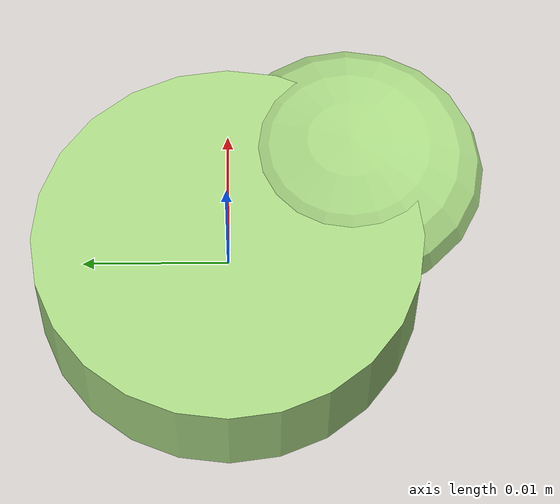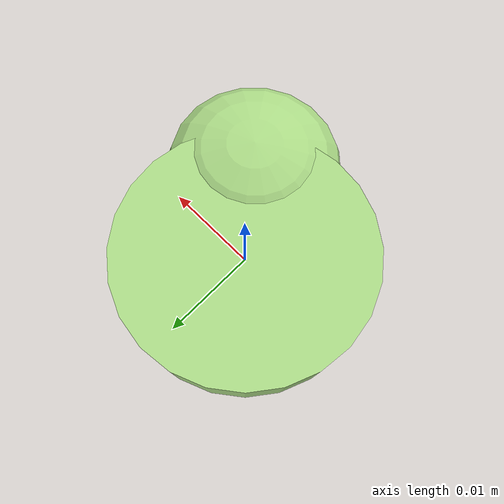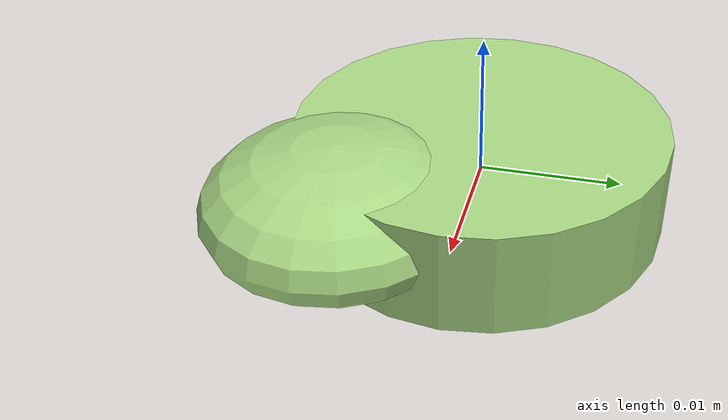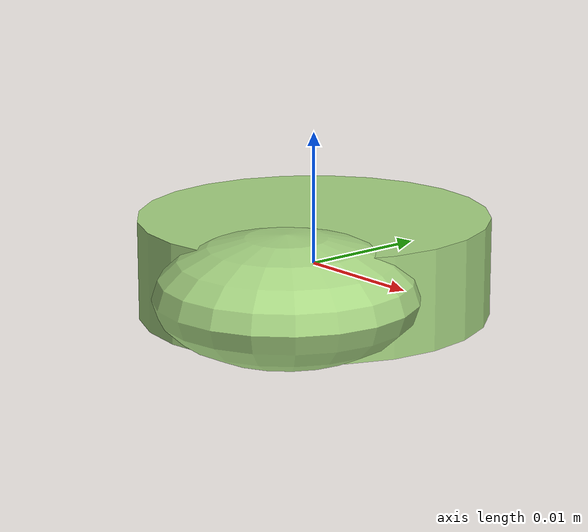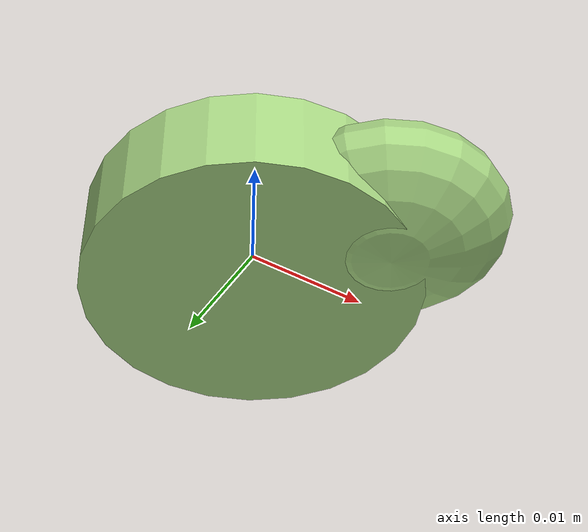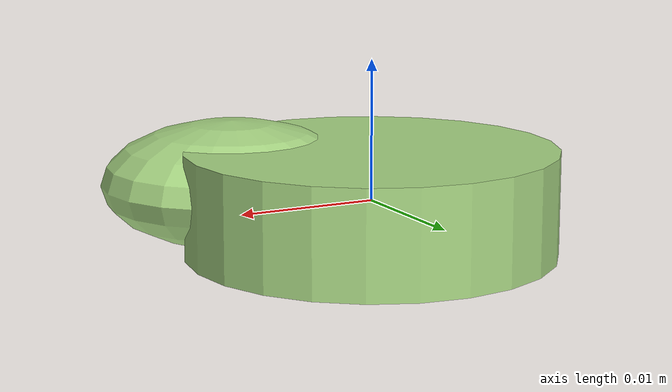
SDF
<?xml version="1.0" ?>
<!-- |    This document was autogenerated by xmacro from data/veggie_template/veggie_base.sdf.xacro  | -->
<!-- |    EDITING THIS FILE BY HAND IS NOT RECOMMENDED                                               | -->
<sdf version="1.8">
	<!-- Parameters -->
	<!-- Base -->
	<!-- Joint 0 -->
	<!-- Link 1 -->
	<!-- Joint 1 -->
	<!-- Link 2 -->
	<!-- Primitives -->
	<!-- All dimensions are half -->
	<!-- Object -->
	<model name="veggie">
		<!-- link0 -->
		<link name="link0">
			<inertial>
				<mass>0.004122107510189637</mass>
				<inertia>
					<ixx>2.0014913580950837e-07</ixx>
					<ixy>0</ixy>
					<ixz>0</ixz>
					<iyy>2.0014913580950837e-07</iyy>
					<iyz>0</iyz>
					<izz>3.619454509916908e-07</izz>
				</inertia>
			</inertial>
			<visual name="link0_visual">
				<pose>0 0 0 0 0 0</pose>
				<geometry>
					<cylinder>
						<radius>0.013251861915637632</radius>
						<length>0.00747161736088727</length>
					</cylinder>
				</geometry>
				<material>
					<ambient>0.659 0.839 0.514 1</ambient>
					<diffuse>0.659 0.839 0.514 1</diffuse>
					<specular>0 0 0 0</specular>
					<emissive>0 0 0 1</emissive>
				</material>
			</visual>
			<collision name="link0_collision">
				<pose>0 0 0 0 0 0 </pose>
				<geometry>
					<cylinder>
						<radius>0.013251861915637632</radius>
						<length>0.00747161736088727</length>
					</cylinder>
				</geometry>
			</collision>
		</link>
		<!-- link1 -->
		<joint name="joint0" type="fixed">
			<pose relative_to="link0">0.006967758827074492 -0.008407076779870633 0.0004390869700018706 0.0 0.0 0.0</pose>
			<parent>link0</parent>
			<child>link1</child>
		</joint>
		<link name="link1">
			<pose relative_to="joint0">0 0 0 0 0 0</pose>
			<inertial>
				<mass>0.0017010188721495781</mass>
				<inertia>
					<ixx>3.73349846094486e-08</ixx>
					<ixy>0</ixy>
					<ixz>0</ixz>
					<iyy>3.7823919410397435e-08</iyy>
					<iyz>0</iyz>
					<izz>6.13623866487668e-08</izz>
				</inertia>
			</inertial>
			<visual name="link1_visual">
				<pose>0 0 0 0 0 0</pose>
				<geometry>
					<ellipsoid>
						<radii>0.009534324515350426 0.009458655390045105 0.004502981621142792</radii>
					</ellipsoid>
				</geometry>
				<material>
					<ambient>0.659 0.839 0.514 1</ambient>
					<diffuse>0.659 0.839 0.514 1</diffuse>
					<specular>0 0 0 0</specular>
					<emissive>0 0 0 1</emissive>
				</material>
			</visual>
			<collision name="link1_collision">
				<pose>0 0 0 0 0 0 </pose>
				<geometry>
					<ellipsoid>
						<radii>0.009534324515350426 0.009458655390045105 0.004502981621142792</radii>
					</ellipsoid>
				</geometry>
			</collision>
		</link>
		<!-- link2 -->
	</model>
</sdf>
